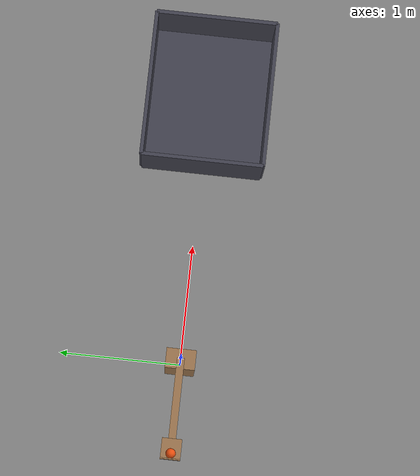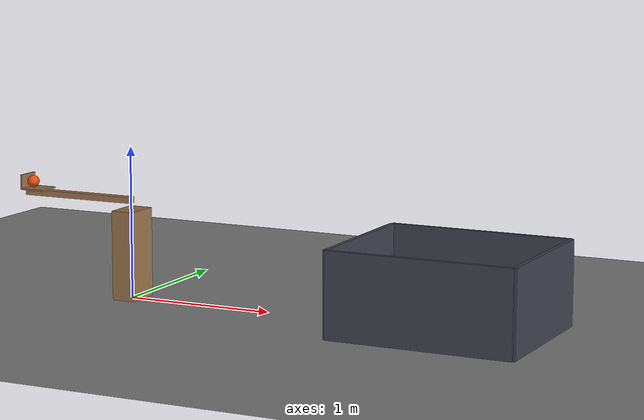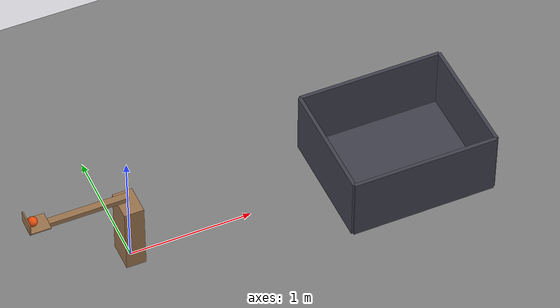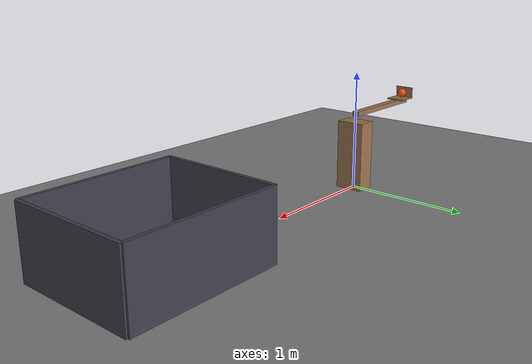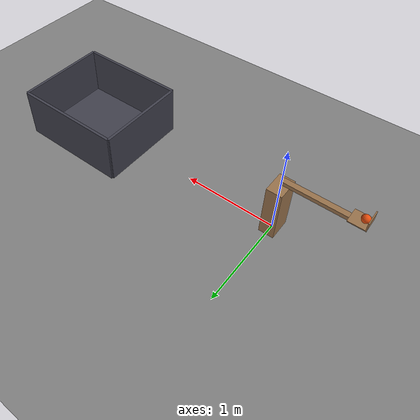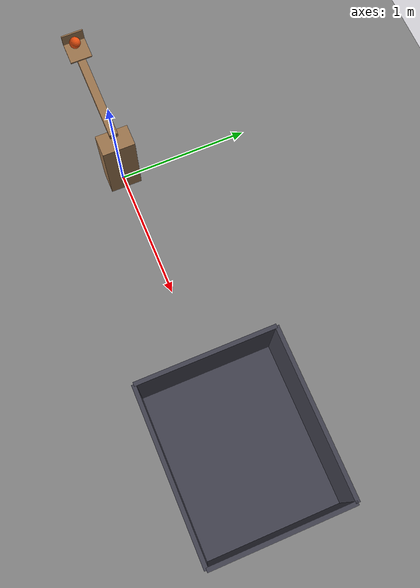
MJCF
<mujoco model="spring_catapult_into_a_bucket">
  <compiler angle="radian"/>
  <option timestep="0.002"/>
  <worldbody>
    <geom name="floor" type="plane" size="8 8 0.1" friction="0.8 0.01 0.005"/>
    <geom name="catapult_stand" type="box" pos="0 0 0.295" size="0.08 0.12 0.295" friction="0.8 0.005 0.0001" solref="0.01 1" rgba="0.6 0.45 0.3 1"/>
    <body name="catapult" pos="0 0 0.65">
      <joint name="catapult_hinge" type="hinge" pos="0 0 0" axis="0 1 0" limited="true" range="0 0.785398" stiffness="4.5" springref="1.5708" damping="0.03" armature="0.01"/>
      <geom name="catapult_arm" type="box" pos="-0.4 0 0" size="0.4 0.03 0.02" mass="0.3" friction="0.8 0.005 0.0001" solref="0.01 1" rgba="0.6 0.45 0.3 1"/>
      <geom name="catapult_scoop_base" type="box" pos="-0.72 0 0.025" size="0.08 0.08 0.005" mass="0.02" friction="0.8 0.005 0.0001" solref="0.01 1" rgba="0.6 0.45 0.3 1"/>
      <geom name="catapult_scoop_back" type="box" pos="-0.805 0 0.07" size="0.005 0.08 0.05" mass="0.01" friction="0.8 0.005 0.0001" solref="0.01 1" rgba="0.6 0.45 0.3 1"/>
    </body>
    <body name="ball" pos="-0.76 0 0.72">
      <freejoint/>
      <geom name="ball" type="sphere" pos="0 0 0" size="0.04" mass="0.1" condim="6" friction="0.8 0.02 0.01" solref="0.01 1" rgba="0.9 0.3 0.05 1"/>
    </body>
    <body name="bucket">
      <geom name="bucket_base" type="box" pos="2.24 0 0.01" size="0.6 0.5 0.01" friction="0.8 0.02 0.01" solref="0.01 1" rgba="0.25 0.25 0.3 1"/>
      <geom name="bucket_near_wall" type="box" pos="1.64 0 0.275" size="0.015 0.5 0.275" friction="0.8 0.02 0.01" solref="0.01 1" rgba="0.25 0.25 0.3 1"/>
      <geom name="bucket_far_wall" type="box" pos="2.84 0 0.275" size="0.015 0.5 0.275" friction="0.8 0.02 0.01" solref="0.01 1" rgba="0.25 0.25 0.3 1"/>
      <geom name="bucket_left_wall" type="box" pos="2.24 0.5 0.275" size="0.6 0.015 0.275" friction="0.8 0.02 0.01" solref="0.01 1" rgba="0.25 0.25 0.3 1"/>
      <geom name="bucket_right_wall" type="box" pos="2.24 -0.5 0.275" size="0.6 0.015 0.275" friction="0.8 0.02 0.01" solref="0.01 1" rgba="0.25 0.25 0.3 1"/>
    </body>
  </worldbody>
  <keyframe>
    <key name="start" qpos="0 -0.76 0 0.72 1 0 0 0" qvel="0 0 0 0 0 0 0"/>
  </keyframe>
</mujoco>
